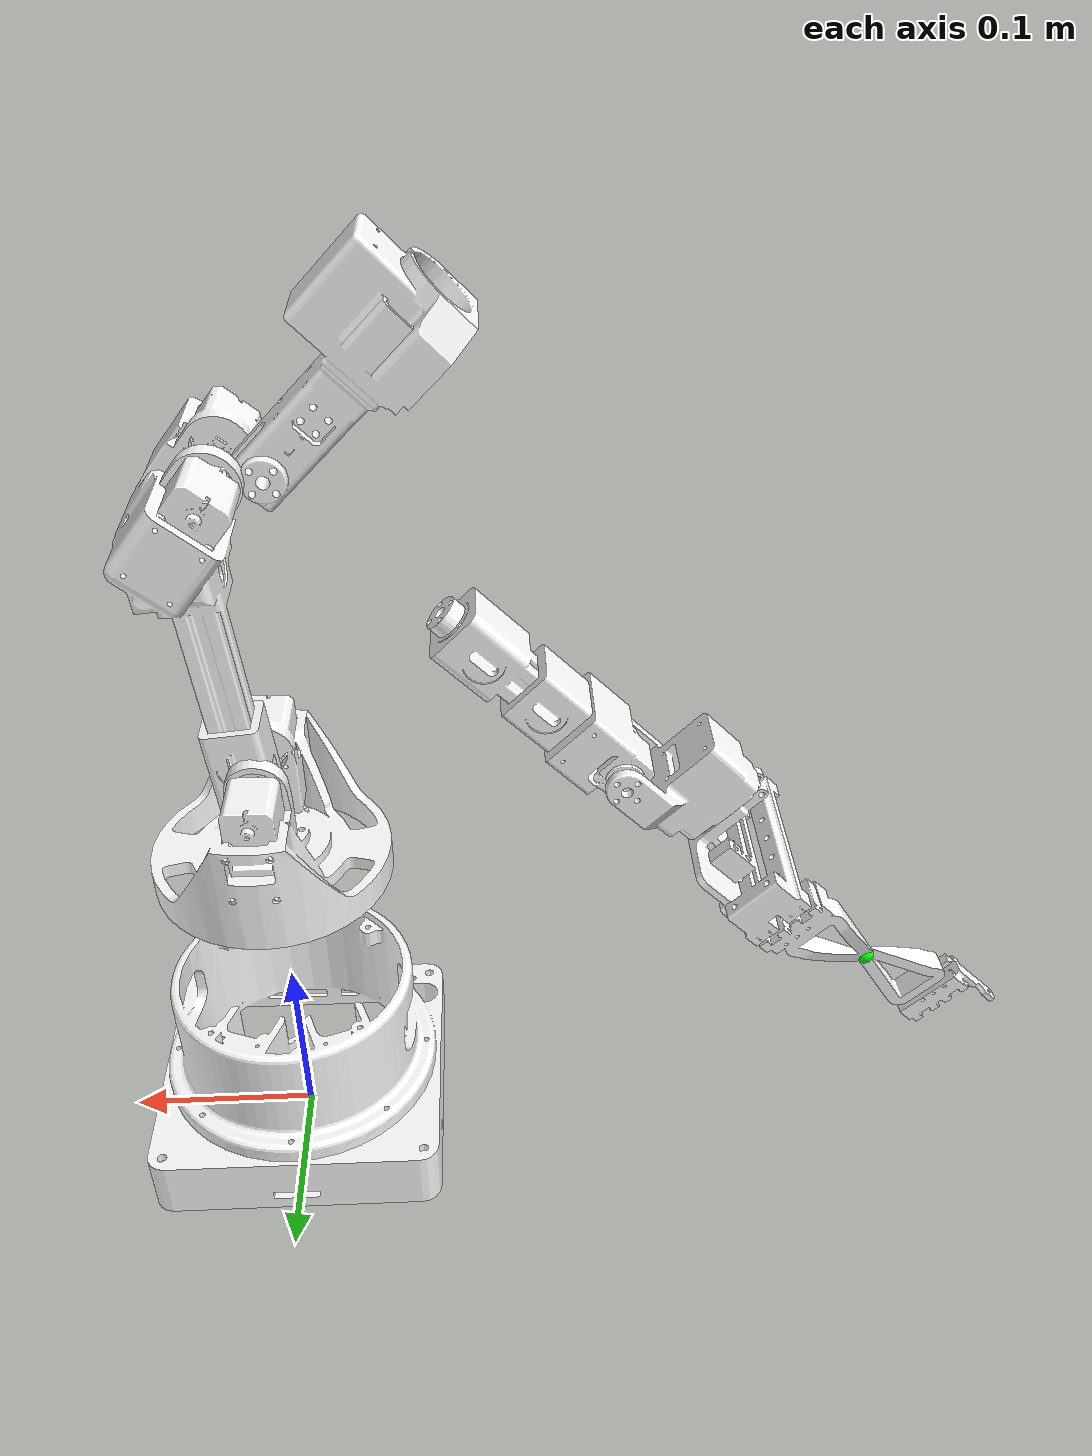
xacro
<?xml version="1.0"?>
<robot name="alicia_duo_descriptions" xmlns:xacro="http://www.ros.org/wiki/xacro">

  <!-- | XACRO PROPERTIES                                                | -->
  <xacro:property name="PI" value="3.1415926535897931" />
  <xacro:property name="mesh_prefix" value="package://alicia_duo_descriptions/meshes/" />

  <!-- | XACRO MACROS                                                    | -->

  <!-- Macro for visual and collision properties of a link -->
  <xacro:macro name="visual_collision_geometry" params="link_name">
    <visual>
      <origin xyz="0 0 0" rpy="0 0 0" />
      <geometry>
        <mesh filename="${mesh_prefix}${link_name}.STL" />
      </geometry>
      <material name="">
        <color rgba="1 1 1 1" />
      </material>
    </visual>
    <collision>
      <origin xyz="0 0 0" rpy="0 0 0" />
      <geometry>
        <mesh filename="${mesh_prefix}${link_name}.STL" />
      </geometry>
    </collision>
  </xacro:macro>

  <!-- Macro for a revolute joint -->
  <xacro:macro name="revolute_joint" params="name parent child origin_xyz origin_rpy axis_xyz lower_limit upper_limit">
    <joint name="${name}" type="revolute">
      <origin xyz="${origin_xyz}" rpy="${origin_rpy}" />
      <parent link="${parent}" />
      <child link="${child}" />
      <axis xyz="${axis_xyz}" />
      <limit lower="${lower_limit}" upper="${upper_limit}" effort="12" velocity="5" />
    </joint>
  </xacro:macro>

  <!-- Macro for a fixed joint -->
  <xacro:macro name="fixed_joint" params="name parent child origin_xyz origin_rpy">
    <joint name="${name}" type="fixed">
      <origin xyz="${origin_xyz}" rpy="${origin_rpy}" />
      <parent link="${parent}" />
      <child link="${child}" />
    </joint>
  </xacro:macro>

  <!-- | ROBOT BODY                                                      | -->

  <!-- Base Link -->
  <link name="base_link">
    <xacro:visual_collision_geometry link_name="base_link" />
  </link>

  <!-- Link 1 -->
  <link name="Link1">
    <inertial>
      <origin xyz="-6.25858197295685E-05 7.92213122987762E-05 -0.0125707541315971" rpy="0 0 0" />
      <mass value="0.203075737500143" />
      <inertia ixx="0.000235905198022555" ixy="7.61837858539045E-07" ixz="-2.9280595447193E-07" iyy="0.000131461412426022" iyz="-9.88206643610389E-07" izz="0.000304852104532108" />
    </inertial>
    <xacro:visual_collision_geometry link_name="Link1" />
  </link>
  <xacro:revolute_joint name="Joint1" parent="base_link" child="Link1"
    origin_xyz="0 0 0.1445" origin_rpy="0 0 0"
    axis_xyz="0 0 1" lower_limit="-2.16" upper_limit="2.16" />

  <!-- Link 2 -->
  <link name="Link2">
    <inertial>
      <origin xyz="0.152520863780152 0.00121050175643325 -2.60950688970463E-05" rpy="0 0 0" />
      <mass value="0.228750683078605" />
      <inertia ixx="0.000128107393781261" ixy="-1.13054976540084E-06" ixz="-3.12979772835143E-06" iyy="0.000222403637398375" iyz="1.86391232896856E-08" izz="0.000138515787941709" />
    </inertial>
    <xacro:visual_collision_geometry link_name="Link2" />
  </link>
  <xacro:revolute_joint name="Joint2" parent="Link1" child="Link2"
    origin_xyz="0 0 0.025106" origin_rpy="${PI/2} -${PI/2} 0"
    axis_xyz="0 0 -1" lower_limit="-${PI}" upper_limit="${PI}" />

  <!-- Link 3 -->
  <link name="Link3">
    <inertial>
      <origin xyz="0.05912098865161 -0.00292884026418549 -0.000206870084897278" rpy="0 0 0" />
      <mass value="0.0902084989642731" />
      <inertia ixx="2.95841837376625E-05" ixy="2.18437703523349E-06" ixz="5.1039314115162E-06" iyy="7.14586965989716E-05" iyz="-3.76178023735153E-07" izz="7.59377961316667E-05" />
    </inertial>
    <xacro:visual_collision_geometry link_name="Link3" />
  </link>
  <xacro:revolute_joint name="Joint3" parent="Link2" child="Link3"
    origin_xyz="0.22367 0.022494 -5E-05" origin_rpy="0 0 2.3562"
    axis_xyz="0 0 -1" lower_limit="-${PI}" upper_limit="${PI}" />

  <!-- Link 4 -->
  <link name="Link4">
    <inertial>
      <origin xyz="-0.000205267063245973 0.000325243129580035 0.0643235983472444" rpy="0 0 0" />
      <mass value="0.0791974889780253" />
      <inertia ixx="2.47725339125505E-05" ixy="3.55587182995024E-10" ixz="7.3334971760673E-08" iyy="2.46627995216068E-05" iyz="-3.46992272423732E-07" izz="1.52344176742998E-05" />
    </inertial>
    <xacro:visual_collision_geometry link_name="Link4" />
  </link>
  <xacro:revolute_joint name="Joint4" parent="Link3" child="Link4"
    origin_xyz="0.0988 0.00211 -0.0001" origin_rpy="${PI/2} 0 ${PI/2}"
    axis_xyz="0 0 -1" lower_limit="-${PI}" upper_limit="${PI}" />

  <!-- Link 5 -->
  <link name="Link5">
    <inertial>
      <origin xyz="-0.0151916000802023 -0.035577609744867 0.00100363196557324" rpy="0 0 0" />
      <mass value="0.0472226666291309" />
      <inertia ixx="1.20278315375537E-05" ixy="-1.17970471503373E-06" ixz="-1.02456210599242E-07" iyy="1.88455470481329E-05" iyz="-1.61484723405352E-07" izz="1.40563866814419E-05" />
    </inertial>
    <xacro:visual_collision_geometry link_name="Link5" />
  </link>
  <xacro:revolute_joint name="Joint5" parent="Link4" child="Link5"
    origin_xyz="0 -0.0007 0.12011" origin_rpy="-${PI/2} 0 0"
    axis_xyz="0 0 -1" lower_limit="-${PI}" upper_limit="${PI}" />

  <!-- Link 6 -->
  <link name="Link6">
    <inertial>
      <origin xyz="-2.29000106100052E-08 -6.06077605290467E-09 -0.00146273730918529" rpy="0 0 0" />
      <mass value="0.000754043064008528" />
      <inertia ixx="1.92362324543726E-08" ixy="2.02419408834135E-13" ixz="1.54264012087565E-14" iyy="1.92356438139941E-08" iyz="3.66078536787572E-15" izz="3.70116466604047E-08" />
    </inertial>
    <xacro:visual_collision_geometry link_name="Link6" />
  </link>
  <xacro:revolute_joint name="Joint6" parent="Link5" child="Link6"
    origin_xyz="-0.0038938 -0.0573 0.0008" origin_rpy="${PI/2} 0 0"
    axis_xyz="0 0 -1" lower_limit="-${PI}" upper_limit="${PI}" />

  <!-- Gripper Base -->
  <link name="Grasp_base">
    <inertial>
      <origin xyz="-0.01841113801577 0.000862734870750302 0.0339710264842798" rpy="0 0 0" />
      <mass value="0.13604884360545" />
      <inertia ixx="7.27853781685838E-05" ixy="3.41504362452082E-08" ixz="1.60963274946906E-06" iyy="2.99495582533924E-05" iyz="9.99190740884026E-07" izz="7.95564628246971E-05" />
    </inertial>
    <xacro:visual_collision_geometry link_name="Grasp_base" />
  </link>
  <xacro:fixed_joint name="Joint6_to_gripper_base" parent="Link6" child="Grasp_base"
    origin_xyz="0 0 0" origin_rpy="0 0 0" />

  <!-- Gripper Fingers -->
  <link name="Link7">
    <inertial>
      <origin xyz="0.00110740859468716 -0.0505406087264605 0.00928374528946711" rpy="0 0 0" />
      <mass value="0.0243492837152759" />
      <inertia ixx="9.48475810350875E-06" ixy="1.12616534990615E-06" ixz="-1.29347870071083E-07" iyy="4.30364201605636E-06" iyz="1.0784812114242E-06" izz="1.21997143402446E-05" />
    </inertial>
    <xacro:visual_collision_geometry link_name="Link7" />
  </link>
  <xacro:fixed_joint name="left_finger" parent="Grasp_base" child="Link7"
    origin_xyz="0.00275 -0.0011661 0.13779" origin_rpy="1.5451 0 0" />

  <link name="Link8">
    <inertial>
      <origin xyz="0.00109597192005223 0.0498868509472224 0.0118634588904307" rpy="0 0 0" />
      <mass value="0.0243228050977196" />
      <inertia ixx="9.45357028936119E-06" ixy="-1.11057133705082E-06" ixz="-1.85645517199125E-07" iyy="4.42974962436958E-06" iyz="-1.4734381267566E-06" izz="1.20341513240267E-05" />
    </inertial>
    <xacro:visual_collision_geometry link_name="Link8" />
  </link>
  <xacro:fixed_joint name="right_finger" parent="Grasp_base" child="Link8"
    origin_xyz="0.00275 0.0028325 0.13768" origin_rpy="-1.5965 0 0" />

  <!-- Tool Center Point (TCP) -->
  <link name="tool0">
    <visual>
      <origin xyz="0 0 0" rpy="0 0 0" />
      <geometry>
        <sphere radius="0.005" />
      </geometry>
      <material name="green_virtual_sphere_material">
        <color rgba="0 1 0 1" />
      </material>
    </visual>
  </link>
  <xacro:fixed_joint name="Grasp2tool" parent="Grasp_base" child="tool0"
    origin_xyz="0.00275 0.0008332 0.13779" origin_rpy="0 0 0" />
  <!-- Import and use ros2_control -->
  <xacro:include filename="$(find alicia_duo_descriptions)/urdf/alicia_duo.ros2_control.xacro" />
  <xacro:alicia_duo_ros2_control name="AliciaDuoSystem" use_fake_hardware="true" />

</robot>
